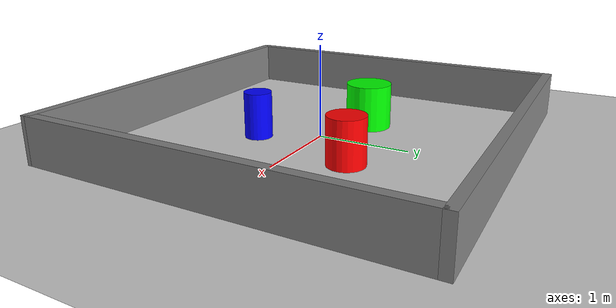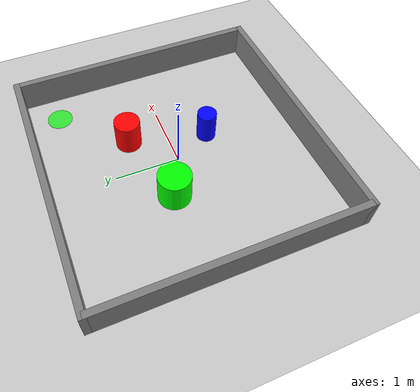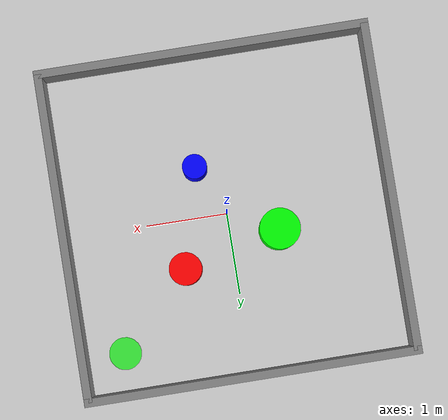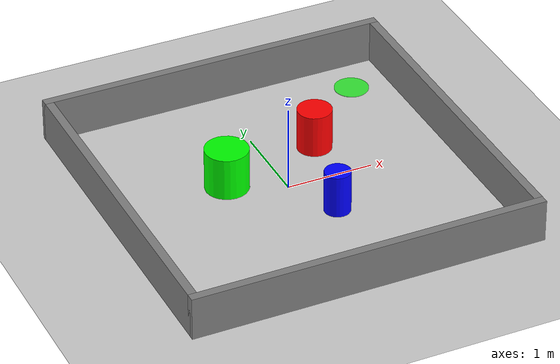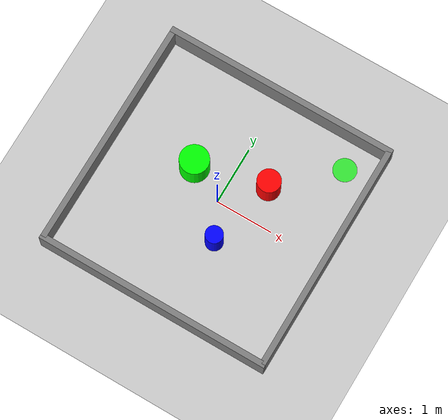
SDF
<?xml version="1.0" ?>
<sdf version="1.8">
  <world name="tp2_arena">

    <plugin filename="gz-sim-physics-system" name="gz::sim::systems::Physics"></plugin>
    <plugin filename="gz-sim-scene-broadcaster-system" name="gz::sim::systems::SceneBroadcaster"></plugin>
    <plugin filename="gz-sim-user-commands-system" name="gz::sim::systems::UserCommands"></plugin>

    <light type="directional" name="sun">
      <cast_shadows>true</cast_shadows>
      <pose>0 0 10 0 0 0</pose>
      <diffuse>0.8 0.8 0.8 1</diffuse>
      <specular>0.2 0.2 0.2 1</specular>
      <attenuation>
        <range>1000</range>
        <constant>0.9</constant>
        <linear>0.01</linear>
        <quadratic>0.001</quadratic>
      </attenuation>
      <direction>-0.5 0.1 -0.9</direction>
    </light>

    <model name="ground_plane">
      <static>true</static>
      <link name="link">
        <collision name="collision">
          <geometry><plane><normal>0 0 1</normal><size>100 100</size></plane></geometry>
        </collision>
        <visual name="visual">
          <geometry><plane><normal>0 0 1</normal><size>100 100</size></plane></geometry>
          <material>
            <ambient>0.8 0.8 0.8 1</ambient>
            <diffuse>0.8 0.8 0.8 1</diffuse>
            <specular>0.8 0.8 0.8 1</specular>
          </material>
        </visual>
      </link>
    </model>

    <model name="walls">
      <static>true</static>

      <link name="wall_north">
        <pose>0 2 0.25 0 0 0</pose>
        <collision name="collision"><geometry><box><size>4.1 0.1 0.5</size></box></geometry></collision>
        <visual name="visual"><geometry><box><size>4.1 0.1 0.5</size></box></geometry>
        <material><ambient>0.5 0.5 0.5 1</ambient><diffuse>0.5 0.5 0.5 1</diffuse></material></visual>
      </link>

      <link name="wall_south">
        <pose>0 -2 0.25 0 0 0</pose>
        <collision name="collision"><geometry><box><size>4.1 0.1 0.5</size></box></geometry></collision>
        <visual name="visual"><geometry><box><size>4.1 0.1 0.5</size></box></geometry>
        <material><ambient>0.5 0.5 0.5 1</ambient><diffuse>0.5 0.5 0.5 1</diffuse></material></visual>
      </link>

      <link name="wall_east">
        <pose>2 0 0.25 0 0 0</pose>
        <collision name="collision"><geometry><box><size>0.1 4 0.5</size></box></geometry></collision>
        <visual name="visual"><geometry><box><size>0.1 4 0.5</size></box></geometry>
        <material><ambient>0.5 0.5 0.5 1</ambient><diffuse>0.5 0.5 0.5 1</diffuse></material></visual>
      </link>

      <link name="wall_west">
        <pose>-2 0 0.25 0 0 0</pose>
        <collision name="collision"><geometry><box><size>0.1 4 0.5</size></box></geometry></collision>
        <visual name="visual"><geometry><box><size>0.1 4 0.5</size></box></geometry>
        <material><ambient>0.5 0.5 0.5 1</ambient><diffuse>0.5 0.5 0.5 1</diffuse></material></visual>
      </link>
    </model>

    <model name="obstacle_1">
      <static>true</static>
      <pose>0.6 0.6 0.25 0 0 0</pose>
      <link name="link">
        <collision name="collision"><geometry><cylinder><radius>0.2</radius><length>0.5</length></cylinder></geometry></collision>
        <visual name="visual"><geometry><cylinder><radius>0.2</radius><length>0.5</length></cylinder></geometry>
        <material><ambient>1 0 0 1</ambient><diffuse>1 0 0 1</diffuse></material></visual>
      </link>
    </model>

    <model name="obstacle_2">
      <static>true</static>
      <pose>-0.6 0.3 0.25 0 0 0</pose>
      <link name="link">
        <collision name="collision"><geometry><cylinder><radius>0.25</radius><length>0.5</length></cylinder></geometry></collision>
        <visual name="visual"><geometry><cylinder><radius>0.25</radius><length>0.5</length></cylinder></geometry>
        <material><ambient>0 1 0 1</ambient><diffuse>0 1 0 1</diffuse></material></visual>
      </link>
    </model>

    <model name="obstacle_3">
      <static>true</static>
      <pose>0.3 -0.6 0.25 0 0 0</pose>
      <link name="link">
        <collision name="collision"><geometry><cylinder><radius>0.15</radius><length>0.5</length></cylinder></geometry></collision>
        <visual name="visual"><geometry><cylinder><radius>0.15</radius><length>0.5</length></cylinder></geometry>
        <material><ambient>0 0 1 1</ambient><diffuse>0 0 1 1</diffuse></material></visual>
      </link>
    </model>

    <model name="goal_area">
      <static>true</static>
      <pose>1.5 1.5 0.01 0 0 0</pose>
      <link name="link">
        <visual name="visual">
          <geometry><cylinder><radius>0.2</radius><length>0.01</length></cylinder></geometry>
          <material><ambient>0.0 1.0 0.0 0.7</ambient><diffuse>0.0 1.0 0.0 0.7</diffuse></material>
        </visual>
      </link>
    </model>

  </world>
</sdf>
